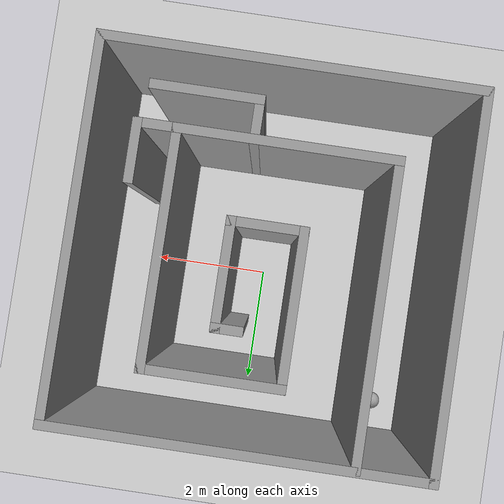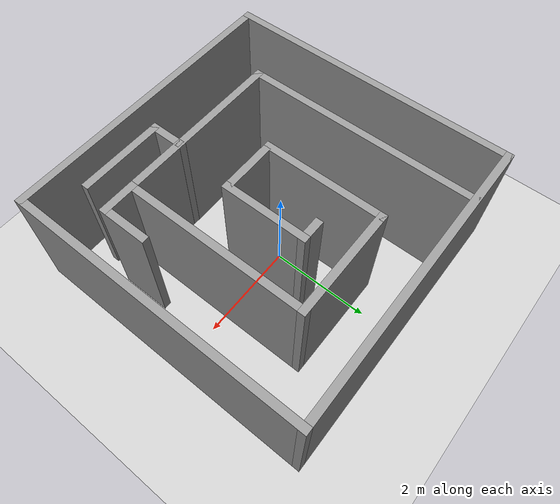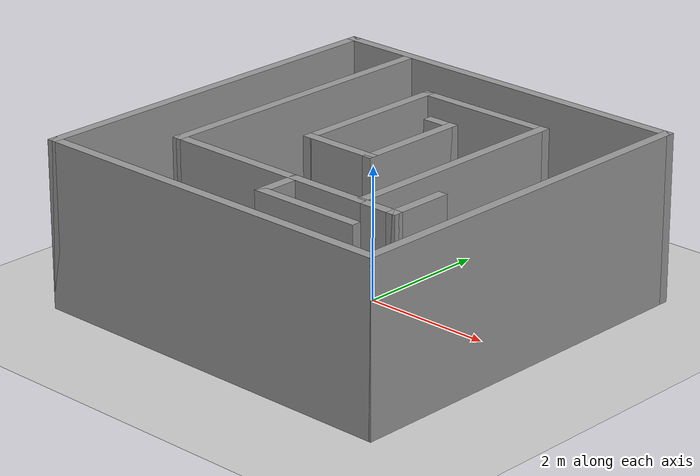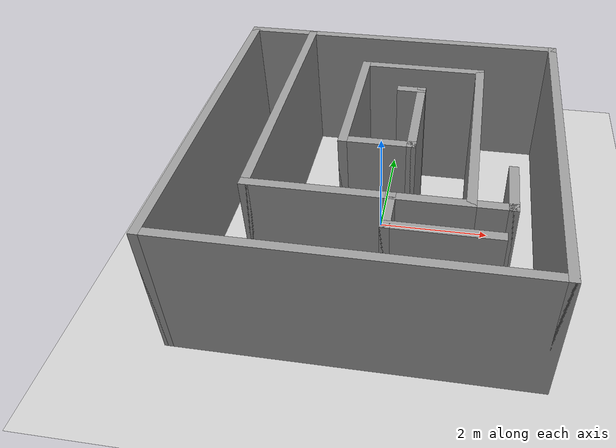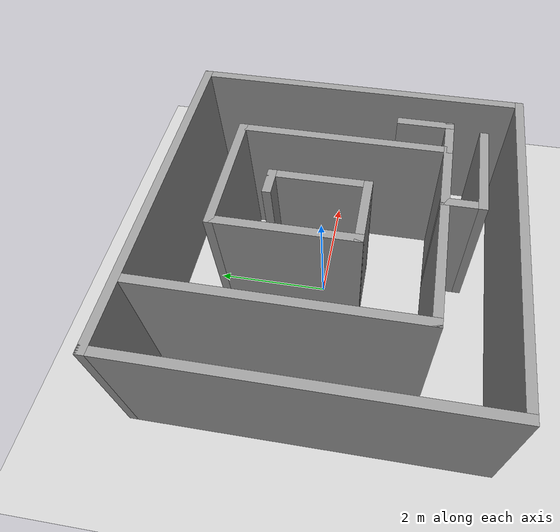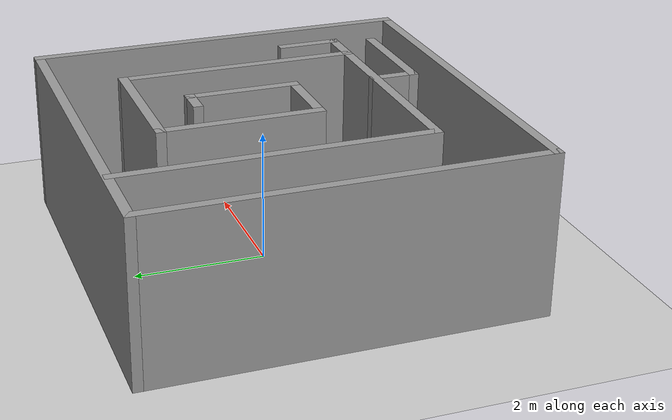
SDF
<sdf version="1.6">
 <world name="default">
  <light name="sun" type="directional">
   <pose>0 0 10 0 -0 0</pose>
   <diffuse>0.8 0.8 0.8 1</diffuse>
   <specular>0.2 0.2 0.2 1</specular>
   <attenuation>
    <range>1000</range>
    <constant>0.9</constant>
    <linear>0.01</linear>
    <quadratic>0.001</quadratic>
   </attenuation>
   <direction>-0.5 0.1 -0.9</direction>
  </light>
  <model name="ground_plane">
   <static>1</static>
   <link name="link">
    <collision name="collision">
     <geometry><plane><normal>0 0 1</normal><size>100 100</size></plane></geometry>
     <surface>
      <contact><collide_bitmask>65535</collide_bitmask></contact>
      <friction><ode><mu>100</mu><mu2>50</mu2></ode></friction>
     </surface>
    </collision>
    <visual name="visual">
     <cast_shadows>0</cast_shadows>
     <geometry><plane><normal>0 0 1</normal><size>100 100</size></plane></geometry>
     <material>
      <script><uri>file://media/materials/scripts/gazebo.material</uri><name>Gazebo/Grey</name></script>
     </material>
    </visual>
   </link>
  </model>
  <gravity>0 0 -9.8</gravity>
  <magnetic_field>6e-06 2.3e-05 -4.2e-05</magnetic_field>
  <atmosphere type="adiabatic"/>
  <physics name="default_physics" default="0" type="ode">
   <max_step_size>0.001</max_step_size>
   <real_time_factor>1</real_time_factor>
   <real_time_update_rate>1000</real_time_update_rate>
  </physics>
  <scene><ambient>0.4 0.4 0.4 1</ambient><background>0.7 0.7 0.7 1</background><shadows>1</shadows></scene>
  <audio><device>default</device></audio>
  <spherical_coordinates>
   <surface_model>EARTH_WGS84</surface_model>
   <latitude_deg>0</latitude_deg>
   <longitude_deg>0</longitude_deg>
   <elevation>0</elevation>
   <heading_deg>0</heading_deg>
  </spherical_coordinates>
  <model name="maze_1">
   <pose>-0.0048 -0.228565 0 0 -0 0</pose>
   <link name="Wall_0">
    <collision name="Wall_0_Collision">
     <geometry><box><size>6 0.15 2.5</size></box></geometry>
     <pose>0 0 1.25 0 -0 0</pose>
    </collision>
    <visual name="Wall_0_Visual">
     <pose>0 0 1.25 0 -0 0</pose>
     <geometry><box><size>6 0.15 2.5</size></box></geometry>
     <material>
      <script><uri>file://media/materials/scripts/gazebo.material</uri><name>Gazebo/Grey</name></script>
      <ambient>1 1 1 1</ambient>
     </material>
     <meta><layer>0</layer></meta>
    </visual>
    <pose>-2.925 0 0 0 -0 -1.5708</pose>
   </link>
   <link name="Wall_1">
    <collision name="Wall_1_Collision">
     <geometry><box><size>6 0.15 2.5</size></box></geometry>
     <pose>0 0 1.25 0 -0 0</pose>
    </collision>
    <visual name="Wall_1_Visual">
     <pose>0 0 1.25 0 -0 0</pose>
     <geometry><box><size>6 0.15 2.5</size></box></geometry>
     <material>
      <script><uri>file://media/materials/scripts/gazebo.material</uri><name>Gazebo/Grey</name></script>
      <ambient>1 1 1 1</ambient>
     </material>
     <meta><layer>0</layer></meta>
    </visual>
    <pose>-0 -2.925 0 0 -0 0</pose>
   </link>
   <link name="Wall_10">
    <collision name="Wall_10_Collision">
     <geometry><box><size>2.25 0.15 2.5</size></box></geometry>
     <pose>0 0 1.25 0 -0 0</pose>
    </collision>
    <visual name="Wall_10_Visual">
     <pose>0 0 1.25 0 -0 0</pose>
     <geometry><box><size>2.25 0.15 2.5</size></box></geometry>
     <material>
      <script><uri>file://media/materials/scripts/gazebo.material</uri><name>Gazebo/Grey</name></script>
      <ambient>1 1 1 1</ambient>
     </material>
     <meta><layer>0</layer></meta>
    </visual>
    <pose>0.535374 1.89602 0 0 -0 3.14159</pose>
   </link>
   <link name="Wall_11">
    <collision name="Wall_11_Collision">
     <geometry><box><size>2.5 0.15 2.5</size></box></geometry>
     <pose>0 0 1.25 0 -0 0</pose>
    </collision>
    <visual name="Wall_11_Visual">
     <pose>0 0 1.25 0 -0 0</pose>
     <geometry><box><size>2.5 0.15 2.5</size></box></geometry>
     <material>
      <script><uri>file://media/materials/scripts/gazebo.material</uri><name>Gazebo/Grey</name></script>
      <ambient>1 1 1 1</ambient>
     </material>
     <meta><layer>0</layer></meta>
    </visual>
    <pose>-0.514626 0.72102 0 0 -0 -1.5708</pose>
   </link>
   <link name="Wall_12">
    <collision name="Wall_12_Collision">
     <geometry><box><size>1.25 0.15 2.5</size></box></geometry>
     <pose>0 0 1.25 0 -0 0</pose>
    </collision>
    <visual name="Wall_12_Visual">
     <pose>0 0 1.25 0 -0 0</pose>
     <geometry><box><size>1.25 0.15 2.5</size></box></geometry>
     <material>
      <script><uri>file://media/materials/scripts/gazebo.material</uri><name>Gazebo/Grey</name></script>
      <ambient>1 1 1 1</ambient>
     </material>
     <meta><layer>0</layer></meta>
    </visual>
    <pose>0.035374 -0.45398 0 0 -0 0</pose>
   </link>
   <link name="Wall_13">
    <collision name="Wall_13_Collision">
     <geometry><box><size>1.75 0.15 2.5</size></box></geometry>
     <pose>0 0 1.25 0 -0 0</pose>
    </collision>
    <visual name="Wall_13_Visual">
     <pose>0 0 1.25 0 -0 0</pose>
     <geometry><box><size>1.75 0.15 2.5</size></box></geometry>
     <material>
      <script><uri>file://media/materials/scripts/gazebo.material</uri><name>Gazebo/Grey</name></script>
      <ambient>1 1 1 1</ambient>
     </material>
     <meta><layer>0</layer></meta>
    </visual>
    <pose>0.585374 0.34602 0 0 -0 1.5708</pose>
   </link>
   <link name="Wall_14">
    <collision name="Wall_14_Collision">
     <geometry><box><size>0.5 0.15 2.5</size></box></geometry>
     <pose>0 0 1.25 0 -0 0</pose>
    </collision>
    <visual name="Wall_14_Visual">
     <pose>0 0 1.25 0 -0 0</pose>
     <geometry><box><size>0.5 0.15 2.5</size></box></geometry>
     <material>
      <script><uri>file://media/materials/scripts/gazebo.material</uri><name>Gazebo/Grey</name></script>
      <ambient>1 1 1 1</ambient>
     </material>
     <meta><layer>0</layer></meta>
    </visual>
    <pose>0.410374 1.14602 0 0 -0 3.14159</pose>
   </link>
   <link name="Wall_2">
    <collision name="Wall_2_Collision">
     <geometry><box><size>6 0.15 2.5</size></box></geometry>
     <pose>0 0 1.25 0 -0 0</pose>
    </collision>
    <visual name="Wall_2_Visual">
     <pose>0 0 1.25 0 -0 0</pose>
     <geometry><box><size>6 0.15 2.5</size></box></geometry>
     <material>
      <script><uri>file://media/materials/scripts/gazebo.material</uri><name>Gazebo/Grey</name></script>
      <ambient>1 1 1 1</ambient>
     </material>
     <meta><layer>0</layer></meta>
    </visual>
    <pose>2.925 0 0 0 -0 1.5708</pose>
   </link>
   <link name="Wall_21">
    <collision name="Wall_21_Collision">
     <geometry><box><size>0.75 0.15 2.5</size></box></geometry>
     <pose>0 0 1.25 0 -0 0</pose>
    </collision>
    <visual name="Wall_21_Visual">
     <pose>0 0 1.25 0 -0 0</pose>
     <geometry><box><size>0.75 0.15 2.5</size></box></geometry>
     <material>
      <script><uri>file://media/materials/scripts/gazebo.material</uri><name>Gazebo/Grey</name></script>
      <ambient>1 1 1 1</ambient>
     </material>
     <meta><layer>0</layer></meta>
    </visual>
    <pose>1.88537 -1.70398 0 0 -0 0</pose>
   </link>
   <link name="Wall_23">
    <collision name="Wall_23_Collision">
     <geometry><box><size>0.75 0.15 2.5</size></box></geometry>
     <pose>0 0 1.25 0 -0 0</pose>
    </collision>
    <visual name="Wall_23_Visual">
     <pose>0 0 1.25 0 -0 0</pose>
     <geometry><box><size>0.75 0.15 2.5</size></box></geometry>
     <material>
      <script><uri>file://media/materials/scripts/gazebo.material</uri><name>Gazebo/Grey</name></script>
      <ambient>1 1 1 1</ambient>
     </material>
     <meta><layer>0</layer></meta>
    </visual>
    <pose>0.421632 -2.00387 0 0 -0 -1.5708</pose>
   </link>
   <link name="Wall_3">
    <collision name="Wall_3_Collision">
     <geometry><box><size>6 0.15 2.5</size></box></geometry>
     <pose>0 0 1.25 0 -0 0</pose>
    </collision>
    <visual name="Wall_3_Visual">
     <pose>0 0 1.25 0 -0 0</pose>
     <geometry><box><size>6 0.15 2.5</size></box></geometry>
     <material>
      <script><uri>file://media/materials/scripts/gazebo.material</uri><name>Gazebo/Grey</name></script>
      <ambient>1 1 1 1</ambient>
     </material>
     <meta><layer>0</layer></meta>
    </visual>
    <pose>-0 2.925 0 0 -0 3.14159</pose>
   </link>
   <link name="Wall_32">
    <collision name="Wall_32_Collision">
     <geometry><box><size>1.75 0.15 2.5</size></box></geometry>
     <pose>0 0 1.25 0 -0 0</pose>
    </collision>
    <visual name="Wall_32_Visual">
     <pose>0 0 1.25 0 -0 0</pose>
     <geometry><box><size>1.75 0.15 2.5</size></box></geometry>
     <material>
      <script><uri>file://media/materials/scripts/gazebo.material</uri><name>Gazebo/Grey</name></script>
      <ambient>1 1 1 1</ambient>
     </material>
     <meta><layer>0</layer></meta>
    </visual>
    <pose>1.22163 -2.30387 0 0 -0 0</pose>
   </link>
   <link name="Wall_34">
    <collision name="Wall_34_Collision">
     <geometry><box><size>1 0.15 2.5</size></box></geometry>
     <pose>0 0 1.25 0 -0 0</pose>
    </collision>
    <visual name="Wall_34_Visual">
     <pose>0 0 1.25 0 -0 0</pose>
     <geometry><box><size>1 0.15 2.5</size></box></geometry>
     <material>
      <script><uri>file://media/materials/scripts/gazebo.material</uri><name>Gazebo/Grey</name></script>
      <ambient>1 1 1 1</ambient>
     </material>
     <meta><layer>0</layer></meta>
    </visual>
    <pose>2.18537 -1.27898 0 0 -0 1.5708</pose>
   </link>
   <link name="Wall_7">
    <collision name="Wall_7_Collision">
     <geometry><box><size>4.75 0.15 2.5</size></box></geometry>
     <pose>0 0 1.25 0 -0 0</pose>
    </collision>
    <visual name="Wall_7_Visual">
     <pose>0 0 1.25 0 -0 0</pose>
     <geometry><box><size>4.75 0.15 2.5</size></box></geometry>
     <material>
      <script><uri>file://media/materials/scripts/gazebo.material</uri><name>Gazebo/Grey</name></script>
      <ambient>1 1 1 1</ambient>
     </material>
     <meta><layer>0</layer></meta>
    </visual>
    <pose>-1.76463 0.59602 0 0 -0 -1.5708</pose>
   </link>
   <link name="Wall_8">
    <collision name="Wall_8_Collision">
     <geometry><box><size>3.5 0.15 2.5</size></box></geometry>
     <pose>0 0 1.25 0 -0 0</pose>
    </collision>
    <visual name="Wall_8_Visual">
     <pose>0 0 1.25 0 -0 0</pose>
     <geometry><box><size>3.5 0.15 2.5</size></box></geometry>
     <material>
      <script><uri>file://media/materials/scripts/gazebo.material</uri><name>Gazebo/Grey</name></script>
      <ambient>1 1 1 1</ambient>
     </material>
     <meta><layer>0</layer></meta>
    </visual>
    <pose>-0.089626 -1.70398 0 0 -0 0</pose>
   </link>
   <link name="Wall_9">
    <collision name="Wall_9_Collision">
     <geometry><box><size>3.75 0.15 2.5</size></box></geometry>
     <pose>0 0 1.25 0 -0 0</pose>
    </collision>
    <visual name="Wall_9_Visual">
     <pose>0 0 1.25 0 -0 0</pose>
     <geometry><box><size>3.75 0.15 2.5</size></box></geometry>
     <material>
      <script><uri>file://media/materials/scripts/gazebo.material</uri><name>Gazebo/Grey</name></script>
      <ambient>1 1 1 1</ambient>
     </material>
     <meta><layer>0</layer></meta>
    </visual>
    <pose>1.58537 0.09602 0 0 -0 1.5708</pose>
   </link>
   <static>1</static>
  </model>
  <model name="Sphere_radius_15cm">
   <link name="link">
    <inertial>
     <mass>1</mass>
     <inertia><ixx>0.1</ixx><ixy>0</ixy><ixz>0</ixz><iyy>0.1</iyy><iyz>0</iyz><izz>0.1</izz></inertia>
    </inertial>
    <visual name="visual">
     <geometry><sphere><radius>0.15</radius></sphere></geometry>
     <material>
      <script><name>Gazebo/Grey</name><uri>file://media/materials/scripts/gazebo.material</uri></script>
      <shader type="vertex"><normal_map>__default__</normal_map></shader>
      <ambient>0.3 0.3 0.3 1</ambient>
      <diffuse>0.7 0.7 0.7 1</diffuse>
      <specular>0.01 0.01 0.01 1</specular>
      <emissive>0 0 0 1</emissive>
     </material>
    </visual>
    <collision name="collision">
     <geometry><sphere><radius>0.15</radius></sphere></geometry>
     <surface>
      <friction>
       <ode><mu>1</mu><mu2>1</mu2><fdir1>0 0 0</fdir1><slip1>0</slip1><slip2>0</slip2></ode>
       <torsional>
        <coefficient>1</coefficient>
        <patch_radius>0</patch_radius>
        <surface_radius>0</surface_radius>
        <use_patch_radius>1</use_patch_radius>
        <ode><slip>0</slip></ode>
       </torsional>
      </friction>
      <bounce><restitution_coefficient>0</restitution_coefficient><threshold>1e+06</threshold></bounce>
      <contact>
       <collide_without_contact>0</collide_without_contact>
       <collide_without_contact_bitmask>1</collide_without_contact_bitmask>
       <collide_bitmask>1</collide_bitmask>
       <ode>
        <soft_cfm>0</soft_cfm>
        <soft_erp>0.2</soft_erp>
        <kp>1e+13</kp>
        <kd>1</kd>
        <max_vel>0.01</max_vel>
        <min_depth>0</min_depth>
       </ode>
       <bullet>
        <split_impulse>1</split_impulse>
        <split_impulse_penetration_threshold>-0.01</split_impulse_penetration_threshold>
        <soft_cfm>0</soft_cfm>
        <soft_erp>0.2</soft_erp>
        <kp>1e+13</kp>
        <kd>1</kd>
       </bullet>
      </contact>
     </surface>
    </collision>
   </link>
   <static>0</static>
   <pose>-2.35704 2.07849 0.15 0 -0 0</pose>
  </model>
 </world>
</sdf>
